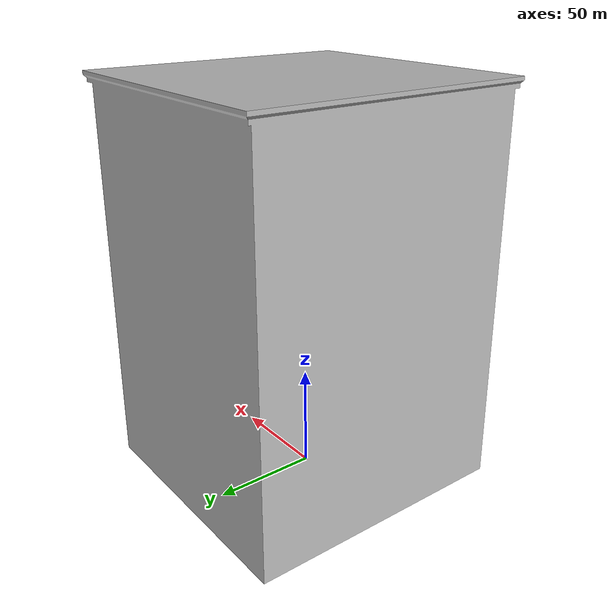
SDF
<?xml version="1.0" ?>
<sdf version="1.6">
  <model name="law_office">
<pose>2.1 1.8 0.2 0 0 0</pose>
    <static>true</static>
    <link name="link">
      <collision name="collision">
        <pose>1.8 1.8 0.2 0 0 0</pose>
        <geometry>
          <box>
            <size>0.06844012958 0.05431646878 0.13924872736</size>
          </box>
        </geometry>
      </collision>
      <visual name="visual">
        <geometry>
	<mesh>
            <uri>model://law_office/meshes/law_office.dae</uri>
<scale>18.44012958 24.31646878 13.924872736</scale>
          </mesh>
        </geometry>
      </visual>
    </link>
  </model>
</sdf>
